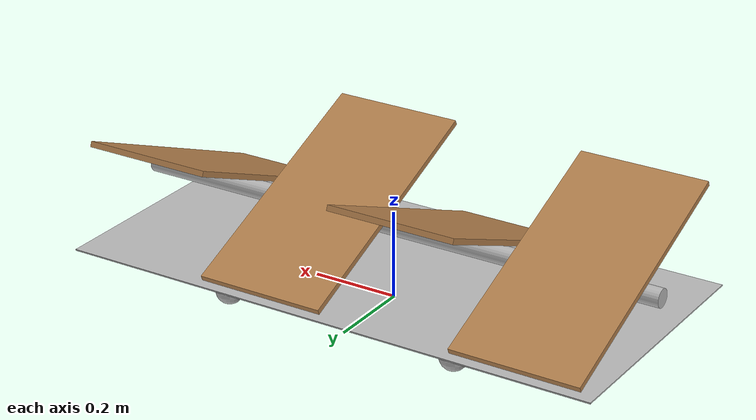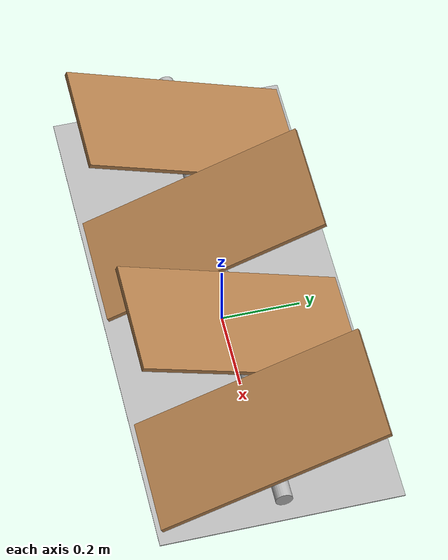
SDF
<?xml version="1.0" ?>
<sdf version="1.5">
 <model name="frc2016_chevaldefrise">
    <link name="base">
      <inertial>
        <mass>10</mass>
        <pose>0 0 0.15672 0 0 0</pose>
        <inertia>
          <ixx>0.380220833</ixx>
          <ixy>0</ixy>
          <ixz>0</ixz>
          <iyy>1.433654167</iyy>
          <iyz>0</iyz>
          <izz>1.647448333</izz>
        </inertia>
      </inertial>

      <visual name="platform">
        <pose>0 0 0.06968 0 0 0</pose>
        <geometry>
          <box>
            <size>1.27 0.5969 0.003175</size>
          </box>
        </geometry>
      </visual>

      <collision name="platform">
        <pose>0 0 0.06968 0 0 0</pose>
        <geometry>
          <box>
            <size>1.27 0.5969 0.003175</size>
          </box>
        </geometry>
      </collision>

      <visual name="bar">
        <pose>0 0 0.16855 0 1.5707 0</pose>
        <geometry>
          <cylinder>
            <radius>0.02108</radius>
            <length>1.273</length>
          </cylinder>
        </geometry>
      </visual>
      <collision name="bar">
        <pose>0 0 0.16855 0 1.5707 0</pose>
        <geometry>
          <cylinder>
            <radius>0.02108</radius>
            <length>1.27</length>
          </cylinder>
        </geometry>
      </collision>

      <visual name="castor1">
        <pose>-0.45653 -0.16581 0.03175 0 0 0</pose>
        <geometry>
          <sphere>
            <radius>0.03175</radius>
          </sphere>
        </geometry>
      </visual>

      <collision name="castor1">
        <pose>-0.45653 -0.16581 0.03175 0 0 0</pose>
        <geometry>
          <sphere>
            <radius>0.03175</radius>
          </sphere>
        </geometry>
      </collision>

      <visual name="castor2">
        <pose>-0.27855 0.21408 0.03175 0 0 0</pose>
        <geometry>
          <sphere>
            <radius>0.03175</radius>
          </sphere>
        </geometry>
      </visual>

      <collision name="castor2">
        <pose>-0.27855 0.21408 0.03175 0 0 0</pose>
        <geometry>
          <sphere>
            <radius>0.03175</radius>
          </sphere>
        </geometry>
      </collision>

      <visual name="castor3">
        <pose>0.28191 0.21419 0.03175 0 0 0</pose>
        <geometry>
          <sphere>
            <radius>0.03175</radius>
          </sphere>
        </geometry>
      </visual>

      <collision name="castor3">
        <pose>0.28191 0.21419 0.03175 0 0 0</pose>
        <geometry>
          <sphere>
            <radius>0.03175</radius>
          </sphere>
        </geometry>
      </collision>

      <visual name="castor4">
        <pose>0.45965 -0.16602 0.03175 0 0 0</pose>
        <geometry>
          <sphere>
            <radius>0.03175</radius>
          </sphere>
        </geometry>
      </visual>

      <collision name="castor4">
        <pose>0.45965 -0.16602 0.03175 0 0 0</pose>
        <geometry>
          <sphere>
            <radius>0.03175</radius>
          </sphere>
        </geometry>
      </collision>
    </link>

    <link name="slant1">
      <pose>-0.45720 0.01307 0.1997 -0.397319587 0 0</pose>

      <inertial>
        <pose>0 0.1 0 0 0 0</pose>
        <mass>2</mass>
        <inertia>
          <ixx>0.060685681</ixx>
          <ixy>0</ixy>
          <ixz>0</ixz>
          <iyy>0.014872282</iyy>
          <iyz>0</iyz>
          <izz>0.0755042</izz>
        </inertia>
      </inertial>

      <visual name="visual">
        <geometry>
          <box>
            <size>0.29845 0.593285005 0.0127</size>
          </box>
        </geometry>
        <material>
          <script>
            <name>Gazebo/WoodFloor</name>
          </script>
        </material>
      </visual>

      <collision name="collision">
        <geometry>
          <box>
            <size>0.29845 0.593285005 0.0127</size>
          </box>
        </geometry>
      </collision>
    </link>

    <link name="slant2">
      <pose>-0.15240 -0.01307 0.1997 0.397319587 0 0</pose>

      <inertial>
        <mass>2</mass>
        <pose>0 -0.1 0 0 0 0</pose>
        <inertia>
          <ixx>0.060685681</ixx>
          <ixy>0</ixy>
          <ixz>0</ixz>
          <iyy>0.014872282</iyy>
          <iyz>0</iyz>
          <izz>0.0755042</izz>
        </inertia>
      </inertial>

      <visual name="visual">
        <geometry>
          <box>
            <size>0.29845 0.593285005 0.0127</size>
          </box>
        </geometry>
        <material>
          <script>
            <name>Gazebo/WoodFloor</name>
          </script>
        </material>
      </visual>

      <collision name="collision">
        <geometry>
          <box>
            <size>0.29845 0.593285005 0.0127</size>
          </box>
        </geometry>
      </collision>
    </link>

    <link name="slant3">
      <pose>0.15240 0.01307 0.1997 -0.397319587 0 0</pose>
      <inertial>
        <pose>0 0.1 0 0 0 0</pose>
        <mass>2</mass>
        <inertia>
          <ixx>0.060685681</ixx>
          <ixy>0</ixy>
          <ixz>0</ixz>
          <iyy>0.014872282</iyy>
          <iyz>0</iyz>
          <izz>0.0755042</izz>
        </inertia>
      </inertial>

      <visual name="visual">
        <geometry>
          <box>
            <size>0.29845 0.593285005 0.0127</size>
          </box>
        </geometry>
        <material>
          <script>
            <name>Gazebo/WoodFloor</name>
          </script>
        </material>
      </visual>

      <collision name="collision">
        <geometry>
          <box>
            <size>0.29845 0.593285005 0.0127</size>
          </box>
        </geometry>
      </collision>
    </link>

    <link name="slant4">
      <pose>0.45720 -0.01307 0.1997 0.397319587 0 0</pose>
      <inertial>
        <pose>0 -0.1 0 0 0 0</pose>
        <mass>2</mass>
        <inertia>
          <ixx>0.060685681</ixx>
          <ixy>0</ixy>
          <ixz>0</ixz>
          <iyy>0.014872282</iyy>
          <iyz>0</iyz>
          <izz>0.0755042</izz>
        </inertia>
      </inertial>

      <visual name="visual">
        <geometry>
          <box>
            <size>0.29845 0.593285005 0.0127</size>
          </box>
        </geometry>
        <material>
          <script>
            <name>Gazebo/WoodFloor</name>
          </script>
        </material>
      </visual>

      <collision name="collision">
        <geometry>
          <box>
            <size>0.29845 0.593285005 0.0127</size>
          </box>
        </geometry>
      </collision>
    </link>

    <joint type="revolute" name="slant1_joint">
      <parent>base</parent>
      <child>slant1</child>
      <axis>
        <xyz>1 0 0</xyz>
        <limit>
          <lower>0</lower>
          <upper>1.5707</upper>
        </limit>
      </axis>
    </joint>

    <joint type="revolute" name="slant2_joint">
      <parent>base</parent>
      <child>slant2</child>
      <axis>
        <xyz>1 0 0</xyz>
        <limit>
          <lower>-1.5707</lower>
          <upper>0</upper>
        </limit>
      </axis>
    </joint>

    <joint type="revolute" name="slant3_joint">
      <parent>base</parent>
      <child>slant3</child>
      <axis>
        <xyz>1 0 0</xyz>
        <limit>
          <lower>0</lower>
          <upper>1.5707</upper>
        </limit>
      </axis>
    </joint>

    <joint type="revolute" name="slant4_joint">
      <parent>base</parent>
      <child>slant4</child>
      <axis>
        <xyz>1 0 0</xyz>
        <limit>
          <lower>-1.5707</lower>
          <upper>0</upper>
        </limit>
      </axis>
    </joint>

  </model>
</sdf>
